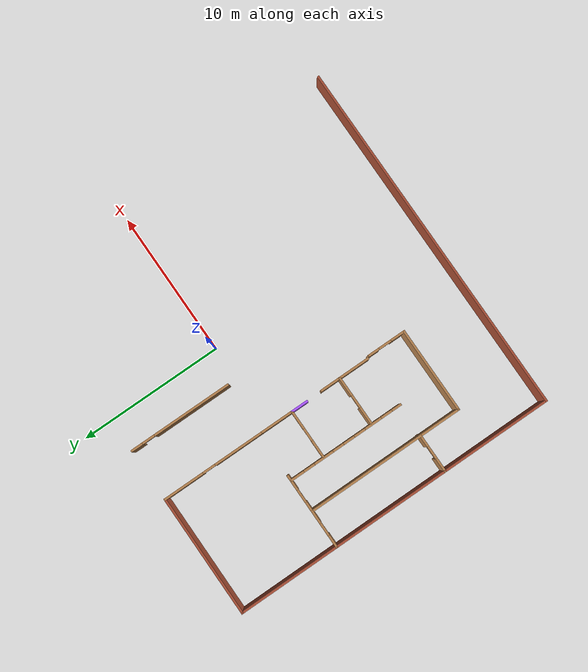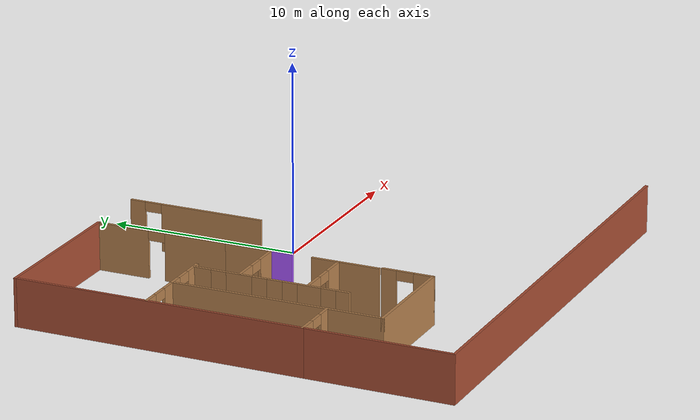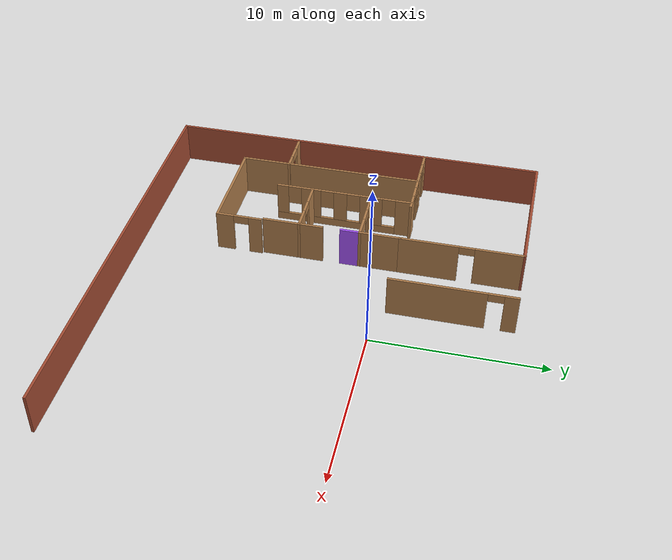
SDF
<sdf version="1.6">
 <model name="Building">
  <pose>-2.11328 -3.59888 0 0 -0 0</pose>
  <link name="Wall_10">
   <pose>-5.625 1.91472 0 0 -0 3.14159</pose>
   <visual name="Wall_10_Visual_0">
    <pose>-1.07415 0 1.25 0 -0 0</pose>
    <geometry><box><size>1.35171 0.15 2.5</size></box></geometry>
    <material>
     <script><uri>file://media/materials/scripts/gazebo.material</uri><name>Gazebo/Wood</name></script>
     <ambient>1 1 1 1</ambient>
    </material>
    <meta><layer>0</layer></meta>
   </visual>
   <collision name="Wall_10_Collision_0">
    <geometry><box><size>1.35171 0.15 2.5</size></box></geometry>
    <pose>-1.07415 0 1.25 0 -0 0</pose>
   </collision>
   <visual name="Wall_10_Visual_1">
    <pose>1.12585 0 1.25 0 -0 0</pose>
    <geometry><box><size>1.24829 0.15 2.5</size></box></geometry>
    <material>
     <script><uri>file://media/materials/scripts/gazebo.material</uri><name>Gazebo/Wood</name></script>
     <ambient>1 1 1 1</ambient>
    </material>
    <meta><layer>0</layer></meta>
   </visual>
   <collision name="Wall_10_Collision_1">
    <geometry><box><size>1.24829 0.15 2.5</size></box></geometry>
    <pose>1.12585 0 1.25 0 -0 0</pose>
   </collision>
   <visual name="Wall_10_Visual_2">
    <pose>0.051708 0 2.25 0 -0 0</pose>
    <geometry><box><size>0.9 0.15 0.5</size></box></geometry>
    <material>
     <script><uri>file://media/materials/scripts/gazebo.material</uri><name>Gazebo/Wood</name></script>
     <ambient>1 1 1 1</ambient>
    </material>
    <meta><layer>0</layer></meta>
   </visual>
   <collision name="Wall_10_Collision_2">
    <geometry><box><size>0.9 0.15 0.5</size></box></geometry>
    <pose>0.051708 0 2.25 0 -0 0</pose>
   </collision>
  </link>
  <link name="Wall_12">
   <pose>-5.60058 -1.67887 0 0 -0 0</pose>
   <visual name="Wall_12_Visual_0">
    <pose>-1.13806 0 1.25 0 -0 0</pose>
    <geometry><box><size>1.22387 0.15 2.5</size></box></geometry>
    <material>
     <script><uri>file://media/materials/scripts/gazebo.material</uri><name>Gazebo/Wood</name></script>
     <ambient>1 1 1 1</ambient>
    </material>
    <meta><layer>0</layer></meta>
   </visual>
   <collision name="Wall_12_Collision_0">
    <geometry><box><size>1.22387 0.15 2.5</size></box></geometry>
    <pose>-1.13806 0 1.25 0 -0 0</pose>
   </collision>
   <visual name="Wall_12_Visual_1">
    <pose>1.06194 0 1.25 0 -0 0</pose>
    <geometry><box><size>1.37613 0.15 2.5</size></box></geometry>
    <material>
     <script><uri>file://media/materials/scripts/gazebo.material</uri><name>Gazebo/Wood</name></script>
     <ambient>1 1 1 1</ambient>
    </material>
    <meta><layer>0</layer></meta>
   </visual>
   <collision name="Wall_12_Collision_1">
    <geometry><box><size>1.37613 0.15 2.5</size></box></geometry>
    <pose>1.06194 0 1.25 0 -0 0</pose>
   </collision>
   <visual name="Wall_12_Visual_2">
    <pose>-0.076126 0 2.25 0 -0 0</pose>
    <geometry><box><size>0.9 0.15 0.5</size></box></geometry>
    <material>
     <script><uri>file://media/materials/scripts/gazebo.material</uri><name>Gazebo/Wood</name></script>
     <ambient>1 1 1 1</ambient>
    </material>
    <meta><layer>0</layer></meta>
   </visual>
   <collision name="Wall_12_Collision_2">
    <geometry><box><size>0.9 0.15 0.5</size></box></geometry>
    <pose>-0.076126 0 2.25 0 -0 0</pose>
   </collision>
  </link>
  <link name="Wall_13">
   <collision name="Wall_13_Collision">
    <geometry><box><size>2.25 0.15 2.5</size></box></geometry>
    <pose>0 0 1.25 0 -0 0</pose>
   </collision>
   <visual name="Wall_13_Visual">
    <pose>0 0 1.25 0 -0 0</pose>
    <geometry><box><size>2.25 0.15 2.5</size></box></geometry>
    <material>
     <script><uri>file://media/materials/scripts/gazebo.material</uri><name>Gazebo/Wood</name></script>
     <ambient>1 1 1 1</ambient>
    </material>
    <meta><layer>0</layer></meta>
   </visual>
   <pose>-3.92558 -2.72887 0 0 0 -1.5708</pose>
  </link>
  <link name="Wall_15">
   <collision name="Wall_15_Collision">
    <geometry><box><size>1.5 0.15 2.5</size></box></geometry>
    <pose>0 0 1.25 0 -0 0</pose>
   </collision>
   <visual name="Wall_15_Visual">
    <pose>0 0 1.25 0 -0 0</pose>
    <geometry><box><size>1.5 0.15 2.5</size></box></geometry>
    <material>
     <script><uri>file://media/materials/scripts/gazebo.material</uri><name>Gazebo/Wood</name></script>
     <ambient>0.666667 0.333333 1 1</ambient>
    </material>
    <meta><layer>0</layer></meta>
   </visual>
   <pose>-3.92558 -1.00387 0 0 -0 1.5708</pose>
  </link>
  <link name="Wall_17">
   <collision name="Wall_17_Collision">
    <geometry><box><size>1.25 0.15 2.5</size></box></geometry>
    <pose>0 0 1.25 0 -0 0</pose>
   </collision>
   <visual name="Wall_17_Visual">
    <pose>0 0 1.25 0 -0 0</pose>
    <geometry><box><size>1.25 0.15 2.5</size></box></geometry>
    <material>
     <script><uri>file://media/materials/scripts/gazebo.material</uri><name>Gazebo/Grey</name></script>
     <ambient>0.666667 0.333333 1 1</ambient>
    </material>
    <meta><layer>0</layer></meta>
   </visual>
   <pose>-3.95 1.36472 0 0 0 -1.5708</pose>
  </link>
  <link name="Wall_24">
   <pose>-3.95 7.81472 0 0 -0 1.5708</pose>
   <visual name="Wall_24_Visual_0">
    <pose>-1.89111 0 1.25 0 -0 0</pose>
    <geometry><box><size>3.46777 0.15 2.5</size></box></geometry>
    <material>
     <script><uri>file://media/materials/scripts/gazebo.material</uri><name>Gazebo/Wood</name></script>
     <ambient>1 1 1 1</ambient>
    </material>
    <meta><layer>0</layer></meta>
   </visual>
   <collision name="Wall_24_Collision_0">
    <geometry><box><size>3.46777 0.15 2.5</size></box></geometry>
    <pose>-1.89111 0 1.25 0 -0 0</pose>
   </collision>
   <visual name="Wall_24_Visual_1">
    <pose>2.18389 0 1.25 0 -0 0</pose>
    <geometry><box><size>2.88223 0.15 2.5</size></box></geometry>
    <material>
     <script><uri>file://media/materials/scripts/gazebo.material</uri><name>Gazebo/Wood</name></script>
     <ambient>1 1 1 1</ambient>
    </material>
    <meta><layer>0</layer></meta>
   </visual>
   <collision name="Wall_24_Collision_1">
    <geometry><box><size>2.88223 0.15 2.5</size></box></geometry>
    <pose>2.18389 0 1.25 0 -0 0</pose>
   </collision>
   <visual name="Wall_24_Visual_2">
    <pose>0.292772 0 2.25 0 -0 0</pose>
    <geometry><box><size>0.9 0.15 0.5</size></box></geometry>
    <material>
     <script><uri>file://media/materials/scripts/gazebo.material</uri><name>Gazebo/Wood</name></script>
     <ambient>1 1 1 1</ambient>
    </material>
    <meta><layer>0</layer></meta>
   </visual>
   <collision name="Wall_24_Collision_2">
    <geometry><box><size>0.9 0.15 0.5</size></box></geometry>
    <pose>0.292772 0 2.25 0 -0 0</pose>
   </collision>
  </link>
  <link name="Wall_28">
   <pose>-0.342826 7.80635 0 0 -0 1.5708</pose>
   <visual name="Wall_28_Visual_0">
    <pose>-0.866599 0 1.25 0 -0 0</pose>
    <geometry><box><size>5.5168 0.15 2.5</size></box></geometry>
    <material>
     <script><uri>file://media/materials/scripts/gazebo.material</uri><name>Gazebo/Wood</name></script>
     <ambient>1 1 1 1</ambient>
    </material>
    <meta><layer>0</layer></meta>
   </visual>
   <collision name="Wall_28_Collision_0">
    <geometry><box><size>5.5168 0.15 2.5</size></box></geometry>
    <pose>-0.866599 0 1.25 0 -0 0</pose>
   </collision>
   <visual name="Wall_28_Visual_1">
    <pose>3.2084 0 1.25 0 -0 0</pose>
    <geometry><box><size>0.833197 0.15 2.5</size></box></geometry>
    <material>
     <script><uri>file://media/materials/scripts/gazebo.material</uri><name>Gazebo/Wood</name></script>
     <ambient>1 1 1 1</ambient>
    </material>
    <meta><layer>0</layer></meta>
   </visual>
   <collision name="Wall_28_Collision_1">
    <geometry><box><size>0.833197 0.15 2.5</size></box></geometry>
    <pose>3.2084 0 1.25 0 -0 0</pose>
   </collision>
   <visual name="Wall_28_Visual_2">
    <pose>2.3418 0 2.25 0 -0 0</pose>
    <geometry><box><size>0.9 0.15 0.5</size></box></geometry>
    <material>
     <script><uri>file://media/materials/scripts/gazebo.material</uri><name>Gazebo/Wood</name></script>
     <ambient>1 1 1 1</ambient>
    </material>
    <meta><layer>0</layer></meta>
   </visual>
   <collision name="Wall_28_Collision_2">
    <geometry><box><size>0.9 0.15 0.5</size></box></geometry>
    <pose>2.3418 0 2.25 0 -0 0</pose>
   </collision>
  </link>
  <link name="Wall_32">
   <collision name="Wall_32_Collision">
    <geometry><box><size>8.5 0.15 2.5</size></box></geometry>
    <pose>0 0 1.25 0 -0 0</pose>
   </collision>
   <visual name="Wall_32_Visual">
    <pose>0 0 1.25 0 -0 0</pose>
    <geometry><box><size>8.5 0.15 2.5</size></box></geometry>
    <material>
     <script><uri>file://media/materials/scripts/gazebo.material</uri><name>Gazebo/Bricks</name></script>
     <ambient>0 0.333333 1 1</ambient>
    </material>
    <meta><layer>0</layer></meta>
   </visual>
   <pose>-8.125 11.3647 0 0 -0 3.14159</pose>
  </link>
  <link name="Wall_33">
   <collision name="Wall_33_Collision">
    <geometry><box><size>15.25 0.15 2.5</size></box></geometry>
    <pose>0 0 1.25 0 -0 0</pose>
   </collision>
   <visual name="Wall_33_Visual">
    <pose>0 0 1.25 0 -0 0</pose>
    <geometry><box><size>15.25 0.15 2.5</size></box></geometry>
    <material>
     <script><uri>file://media/materials/scripts/gazebo.material</uri><name>Gazebo/Bricks</name></script>
     <ambient>0 0.333333 1 1</ambient>
    </material>
    <meta><layer>0</layer></meta>
   </visual>
   <pose>-12.3 3.81472 0 0 0 -1.5708</pose>
  </link>
  <link name="Wall_34">
   <pose>-10.9689 -3.73528 0 0 -0 0</pose>
   <visual name="Wall_34_Visual_0">
    <pose>-0.895229 0 1.25 0 -0 0</pose>
    <geometry><box><size>1.02177 0.15 2.5</size></box></geometry>
    <material>
     <script><uri>file://media/materials/scripts/gazebo.material</uri><name>Gazebo/Wood</name></script>
     <ambient>1 1 1 1</ambient>
    </material>
    <meta><layer>0</layer></meta>
   </visual>
   <collision name="Wall_34_Collision_0">
    <geometry><box><size>1.02177 0.15 2.5</size></box></geometry>
    <pose>-0.895229 0 1.25 0 -0 0</pose>
   </collision>
   <visual name="Wall_34_Visual_1">
    <pose>0.960885 0 1.25 0 -0 0</pose>
    <geometry><box><size>0.890458 0.15 2.5</size></box></geometry>
    <material>
     <script><uri>file://media/materials/scripts/gazebo.material</uri><name>Gazebo/Wood</name></script>
     <ambient>1 1 1 1</ambient>
    </material>
    <meta><layer>0</layer></meta>
   </visual>
   <collision name="Wall_34_Collision_1">
    <geometry><box><size>0.890458 0.15 2.5</size></box></geometry>
    <pose>0.960885 0 1.25 0 -0 0</pose>
   </collision>
   <visual name="Wall_34_Visual_2">
    <pose>0.065657 0 2.25 0 -0 0</pose>
    <geometry><box><size>0.9 0.15 0.5</size></box></geometry>
    <material>
     <script><uri>file://media/materials/scripts/gazebo.material</uri><name>Gazebo/Wood</name></script>
     <ambient>1 1 1 1</ambient>
    </material>
    <meta><layer>0</layer></meta>
   </visual>
   <collision name="Wall_34_Collision_2">
    <geometry><box><size>0.9 0.15 0.5</size></box></geometry>
    <pose>0.065657 0 2.25 0 -0 0</pose>
   </collision>
  </link>
  <link name="Wall_35">
   <collision name="Wall_35_Collision">
    <geometry><box><size>8.25 0.15 2.5</size></box></geometry>
    <pose>0 0 1.25 0 -0 0</pose>
   </collision>
   <visual name="Wall_35_Visual">
    <pose>0 0 1.25 0 -0 0</pose>
    <geometry><box><size>8.25 0.15 2.5</size></box></geometry>
    <material>
     <script><uri>file://media/materials/scripts/gazebo.material</uri><name>Gazebo/Wood</name></script>
     <ambient>1 1 1 1</ambient>
    </material>
    <meta><layer>0</layer></meta>
   </visual>
   <pose>-9.66889 0.314724 0 0 -0 1.5708</pose>
  </link>
  <link name="Wall_37">
   <pose>-8.36889 4.36472 0 0 -0 0</pose>
   <visual name="Wall_37_Visual_0">
    <pose>-0.997307 0 1.25 0 -0 0</pose>
    <geometry><box><size>0.755386 0.15 2.5</size></box></geometry>
    <material>
     <script><uri>file://media/materials/scripts/gazebo.material</uri><name>Gazebo/Wood</name></script>
     <ambient>1 1 1 1</ambient>
    </material>
    <meta><layer>0</layer></meta>
   </visual>
   <collision name="Wall_37_Collision_0">
    <geometry><box><size>0.755386 0.15 2.5</size></box></geometry>
    <pose>-0.997307 0 1.25 0 -0 0</pose>
   </collision>
   <visual name="Wall_37_Visual_1">
    <pose>0.827693 0 1.25 0 -0 0</pose>
    <geometry><box><size>1.09461 0.15 2.5</size></box></geometry>
    <material>
     <script><uri>file://media/materials/scripts/gazebo.material</uri><name>Gazebo/Wood</name></script>
     <ambient>1 1 1 1</ambient>
    </material>
    <meta><layer>0</layer></meta>
   </visual>
   <collision name="Wall_37_Collision_1">
    <geometry><box><size>1.09461 0.15 2.5</size></box></geometry>
    <pose>0.827693 0 1.25 0 -0 0</pose>
   </collision>
   <visual name="Wall_37_Visual_2">
    <pose>-0.169614 0 2.25 0 -0 0</pose>
    <geometry><box><size>0.9 0.15 0.5</size></box></geometry>
    <material>
     <script><uri>file://media/materials/scripts/gazebo.material</uri><name>Gazebo/Wood</name></script>
     <ambient>1 1 1 1</ambient>
    </material>
    <meta><layer>0</layer></meta>
   </visual>
   <collision name="Wall_37_Collision_2">
    <geometry><box><size>0.9 0.15 0.5</size></box></geometry>
    <pose>-0.169614 0 2.25 0 -0 0</pose>
   </collision>
  </link>
  <link name="Wall_39">
   <pose>-10.9689 4.36472 0 0 -0 3.14159</pose>
   <visual name="Wall_39_Visual_0">
    <pose>-0.897214 0 1.25 0 -0 0</pose>
    <geometry><box><size>0.955572 0.15 2.5</size></box></geometry>
    <material>
     <script><uri>file://media/materials/scripts/gazebo.material</uri><name>Gazebo/Wood</name></script>
     <ambient>1 1 1 1</ambient>
    </material>
    <meta><layer>0</layer></meta>
   </visual>
   <collision name="Wall_39_Collision_0">
    <geometry><box><size>0.955572 0.15 2.5</size></box></geometry>
    <pose>-0.897214 0 1.25 0 -0 0</pose>
   </collision>
   <visual name="Wall_39_Visual_1">
    <pose>0.927786 0 1.25 0 -0 0</pose>
    <geometry><box><size>0.894428 0.15 2.5</size></box></geometry>
    <material>
     <script><uri>file://media/materials/scripts/gazebo.material</uri><name>Gazebo/Wood</name></script>
     <ambient>1 1 1 1</ambient>
    </material>
    <meta><layer>0</layer></meta>
   </visual>
   <collision name="Wall_39_Collision_1">
    <geometry><box><size>0.894428 0.15 2.5</size></box></geometry>
    <pose>0.927786 0 1.25 0 -0 0</pose>
   </collision>
   <visual name="Wall_39_Visual_2">
    <pose>0.030572 0 2.25 0 -0 0</pose>
    <geometry><box><size>0.9 0.15 0.5</size></box></geometry>
    <material>
     <script><uri>file://media/materials/scripts/gazebo.material</uri><name>Gazebo/Wood</name></script>
     <ambient>1 1 1 1</ambient>
    </material>
    <meta><layer>0</layer></meta>
   </visual>
   <collision name="Wall_39_Collision_2">
    <geometry><box><size>0.9 0.15 0.5</size></box></geometry>
    <pose>0.030572 0 2.25 0 -0 0</pose>
   </collision>
  </link>
  <link name="Wall_4">
   <pose>-7.39453 0.24905 0 0 0 -1.5708</pose>
   <visual name="Wall_4_Visual_0">
    <pose>-3.63964 0 1.25 0 -0 0</pose>
    <geometry><box><size>0.970709 0.15 2.5</size></box></geometry>
    <material>
     <script><uri>file://media/materials/scripts/gazebo.material</uri><name>Gazebo/Wood</name></script>
     <ambient>1 1 1 1</ambient>
    </material>
    <meta><layer>0</layer></meta>
   </visual>
   <collision name="Wall_4_Collision_0">
    <geometry><box><size>0.970709 0.15 2.5</size></box></geometry>
    <pose>-3.63964 0 1.25 0 -0 0</pose>
   </collision>
   <visual name="Wall_4_Visual_1">
    <pose>0.485355 0 0.25 0 -0 0</pose>
    <geometry><box><size>7.27929 0.15 0.5</size></box></geometry>
    <material>
     <script><uri>file://media/materials/scripts/gazebo.material</uri><name>Gazebo/Wood</name></script>
     <ambient>1 1 1 1</ambient>
    </material>
    <meta><layer>0</layer></meta>
   </visual>
   <collision name="Wall_4_Collision_1">
    <geometry><box><size>7.27929 0.15 0.5</size></box></geometry>
    <pose>0.485355 0 0.25 0 -0 0</pose>
   </collision>
   <visual name="Wall_4_Visual_2">
    <pose>-1.67087 0 1.5 0 -0 0</pose>
    <geometry><box><size>1.36685 0.15 2</size></box></geometry>
    <material>
     <script><uri>file://media/materials/scripts/gazebo.material</uri><name>Gazebo/Wood</name></script>
     <ambient>1 1 1 1</ambient>
    </material>
    <meta><layer>0</layer></meta>
   </visual>
   <collision name="Wall_4_Collision_2">
    <geometry><box><size>1.36685 0.15 2</size></box></geometry>
    <pose>-1.67087 0 1.5 0 -0 0</pose>
   </collision>
   <visual name="Wall_4_Visual_3">
    <pose>0.215098 0 1.5 0 -0 0</pose>
    <geometry><box><size>0.805075 0.15 2</size></box></geometry>
    <material>
     <script><uri>file://media/materials/scripts/gazebo.material</uri><name>Gazebo/Wood</name></script>
     <ambient>1 1 1 1</ambient>
    </material>
    <meta><layer>0</layer></meta>
   </visual>
   <collision name="Wall_4_Collision_3">
    <geometry><box><size>0.805075 0.15 2</size></box></geometry>
    <pose>0.215098 0 1.5 0 -0 0</pose>
   </collision>
   <visual name="Wall_4_Visual_4">
    <pose>2.02081 0 1.5 0 -0 0</pose>
    <geometry><box><size>1.20634 0.15 2</size></box></geometry>
    <material>
     <script><uri>file://media/materials/scripts/gazebo.material</uri><name>Gazebo/Wood</name></script>
     <ambient>1 1 1 1</ambient>
    </material>
    <meta><layer>0</layer></meta>
   </visual>
   <collision name="Wall_4_Collision_4">
    <geometry><box><size>1.20634 0.15 2</size></box></geometry>
    <pose>2.02081 0 1.5 0 -0 0</pose>
   </collision>
   <visual name="Wall_4_Visual_5">
    <pose>3.77449 0 1.5 0 -0 0</pose>
    <geometry><box><size>0.701021 0.15 2</size></box></geometry>
    <material>
     <script><uri>file://media/materials/scripts/gazebo.material</uri><name>Gazebo/Wood</name></script>
     <ambient>1 1 1 1</ambient>
    </material>
    <meta><layer>0</layer></meta>
   </visual>
   <collision name="Wall_4_Collision_5">
    <geometry><box><size>0.701021 0.15 2</size></box></geometry>
    <pose>3.77449 0 1.5 0 -0 0</pose>
   </collision>
   <visual name="Wall_4_Visual_6">
    <pose>-2.75429 0 1.9 0 -0 0</pose>
    <geometry><box><size>0.8 0.15 1.2</size></box></geometry>
    <material>
     <script><uri>file://media/materials/scripts/gazebo.material</uri><name>Gazebo/Wood</name></script>
     <ambient>1 1 1 1</ambient>
    </material>
    <meta><layer>0</layer></meta>
   </visual>
   <collision name="Wall_4_Collision_6">
    <geometry><box><size>0.8 0.15 1.2</size></box></geometry>
    <pose>-2.75429 0 1.9 0 -0 0</pose>
   </collision>
   <visual name="Wall_4_Visual_7">
    <pose>-0.58744 0 1.9 0 -0 0</pose>
    <geometry><box><size>0.8 0.15 1.2</size></box></geometry>
    <material>
     <script><uri>file://media/materials/scripts/gazebo.material</uri><name>Gazebo/Wood</name></script>
     <ambient>1 1 1 1</ambient>
    </material>
    <meta><layer>0</layer></meta>
   </visual>
   <collision name="Wall_4_Collision_7">
    <geometry><box><size>0.8 0.15 1.2</size></box></geometry>
    <pose>-0.58744 0 1.9 0 -0 0</pose>
   </collision>
   <visual name="Wall_4_Visual_8">
    <pose>1.01764 0 1.9 0 -0 0</pose>
    <geometry><box><size>0.8 0.15 1.2</size></box></geometry>
    <material>
     <script><uri>file://media/materials/scripts/gazebo.material</uri><name>Gazebo/Wood</name></script>
     <ambient>1 1 1 1</ambient>
    </material>
    <meta><layer>0</layer></meta>
   </visual>
   <collision name="Wall_4_Collision_8">
    <geometry><box><size>0.8 0.15 1.2</size></box></geometry>
    <pose>1.01764 0 1.9 0 -0 0</pose>
   </collision>
   <visual name="Wall_4_Visual_9">
    <pose>3.02398 0 1.9 0 -0 0</pose>
    <geometry><box><size>0.8 0.15 1.2</size></box></geometry>
    <material>
     <script><uri>file://media/materials/scripts/gazebo.material</uri><name>Gazebo/Wood</name></script>
     <ambient>1 1 1 1</ambient>
    </material>
    <meta><layer>0</layer></meta>
   </visual>
   <collision name="Wall_4_Collision_9">
    <geometry><box><size>0.8 0.15 1.2</size></box></geometry>
    <pose>3.02398 0 1.9 0 -0 0</pose>
   </collision>
  </link>
  <link name="Wall_41">
   <collision name="Wall_41_Collision">
    <geometry><box><size>7.75 0.15 2.5</size></box></geometry>
    <pose>0 0 1.25 0 -0 0</pose>
   </collision>
   <visual name="Wall_41_Visual">
    <pose>0 0 1.25 0 -0 0</pose>
    <geometry><box><size>7.75 0.15 2.5</size></box></geometry>
    <material>
     <script><uri>file://media/materials/scripts/gazebo.material</uri><name>Gazebo/Bricks</name></script>
     <ambient>0 0.333333 1 1</ambient>
    </material>
    <meta><layer>0</layer></meta>
   </visual>
   <pose>-12.3 -7.53528 0 0 0 -1.5708</pose>
  </link>
  <link name="Wall_42">
   <collision name="Wall_42_Collision">
    <geometry><box><size>24.75 0.15 2.5</size></box></geometry>
    <pose>0 0 1.25 0 -0 0</pose>
   </collision>
   <visual name="Wall_42_Visual">
    <pose>0 0 1.25 0 -0 0</pose>
    <geometry><box><size>24.75 0.15 2.5</size></box></geometry>
    <material>
     <script><uri>file://media/materials/scripts/gazebo.material</uri><name>Gazebo/Bricks</name></script>
     <ambient>0 0.333333 1 1</ambient>
    </material>
    <meta><layer>0</layer></meta>
   </visual>
   <pose>0 -11.3353 0 0 -0 0</pose>
  </link>
  <link name="Wall_45">
   <collision name="Wall_45_Collision">
    <geometry><box><size>3 0.15 2.5</size></box></geometry>
    <pose>0 0 1.25 0 -0 0</pose>
   </collision>
   <visual name="Wall_45_Visual">
    <pose>0 0 1.25 0 -0 0</pose>
    <geometry><box><size>3 0.15 2.5</size></box></geometry>
    <material>
     <script><uri>file://media/materials/scripts/gazebo.material</uri><name>Gazebo/Wood</name></script>
     <ambient>1 1 1 1</ambient>
    </material>
    <meta><layer>0</layer></meta>
   </visual>
   <pose>-9.66889 -5.16028 0 0 0 -1.5708</pose>
  </link>
  <link name="Wall_46">
   <collision name="Wall_46_Collision">
    <geometry><box><size>6 0.15 2.5</size></box></geometry>
    <pose>0 0 1.25 0 -0 0</pose>
   </collision>
   <visual name="Wall_46_Visual">
    <pose>0 0 1.25 0 -0 0</pose>
    <geometry><box><size>6 0.15 2.5</size></box></geometry>
    <material>
     <script><uri>file://media/materials/scripts/gazebo.material</uri><name>Gazebo/Wood</name></script>
     <ambient>1 1 1 1</ambient>
    </material>
    <meta><layer>0</layer></meta>
   </visual>
   <pose>-6.74389 -6.58528 0 0 -0 0</pose>
  </link>
  <link name="Wall_47">
   <pose>-3.81889 -5.28528 0 0 -0 1.5708</pose>
   <visual name="Wall_47_Visual_0">
    <pose>-0.843464 0 1.25 0 -0 0</pose>
    <geometry><box><size>1.06307 0.15 2.5</size></box></geometry>
    <material>
     <script><uri>file://media/materials/scripts/gazebo.material</uri><name>Gazebo/Wood</name></script>
     <ambient>1 1 1 1</ambient>
    </material>
    <meta><layer>0</layer></meta>
   </visual>
   <collision name="Wall_47_Collision_0">
    <geometry><box><size>1.06307 0.15 2.5</size></box></geometry>
    <pose>-0.843464 0 1.25 0 -0 0</pose>
   </collision>
   <visual name="Wall_47_Visual_1">
    <pose>0.981536 0 1.25 0 -0 0</pose>
    <geometry><box><size>0.786929 0.15 2.5</size></box></geometry>
    <material>
     <script><uri>file://media/materials/scripts/gazebo.material</uri><name>Gazebo/Wood</name></script>
     <ambient>1 1 1 1</ambient>
    </material>
    <meta><layer>0</layer></meta>
   </visual>
   <collision name="Wall_47_Collision_1">
    <geometry><box><size>0.786929 0.15 2.5</size></box></geometry>
    <pose>0.981536 0 1.25 0 -0 0</pose>
   </collision>
   <visual name="Wall_47_Visual_2">
    <pose>0.138071 0 2.25 0 -0 0</pose>
    <geometry><box><size>0.9 0.15 0.5</size></box></geometry>
    <material>
     <script><uri>file://media/materials/scripts/gazebo.material</uri><name>Gazebo/Wood</name></script>
     <ambient>1 1 1 1</ambient>
    </material>
    <meta><layer>0</layer></meta>
   </visual>
   <collision name="Wall_47_Collision_2">
    <geometry><box><size>0.9 0.15 0.5</size></box></geometry>
    <pose>0.138071 0 2.25 0 -0 0</pose>
   </collision>
  </link>
  <link name="Wall_9">
   <collision name="Wall_9_Collision">
    <geometry><box><size>2.5 0.15 2.5</size></box></geometry>
    <pose>0 0 1.25 0 -0 0</pose>
   </collision>
   <visual name="Wall_9_Visual">
    <pose>0 0 1.25 0 -0 0</pose>
    <geometry><box><size>2.5 0.15 2.5</size></box></geometry>
    <material>
     <script><uri>file://media/materials/scripts/gazebo.material</uri><name>Gazebo/Wood</name></script>
     <ambient>1 1 1 1</ambient>
    </material>
    <meta><layer>0</layer></meta>
   </visual>
   <pose>-3.95 3.08972 0 0 0 -1.5708</pose>
  </link>
  <static>1</static>
 </model>
</sdf>
